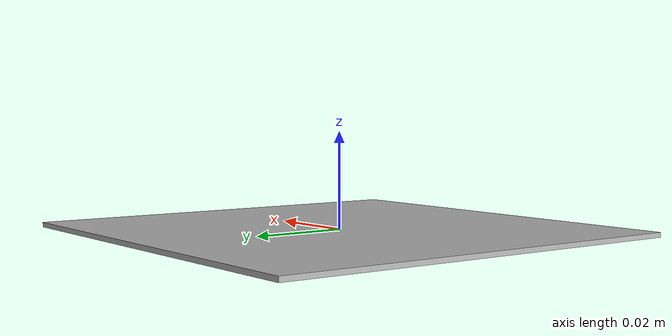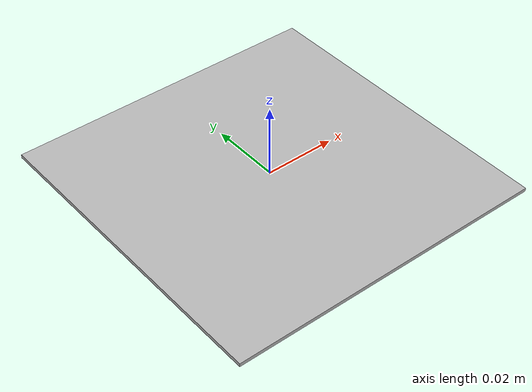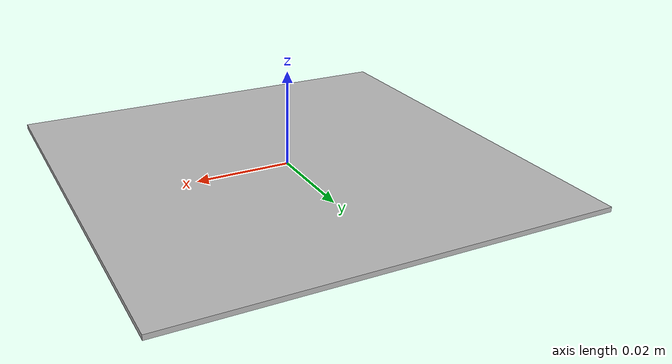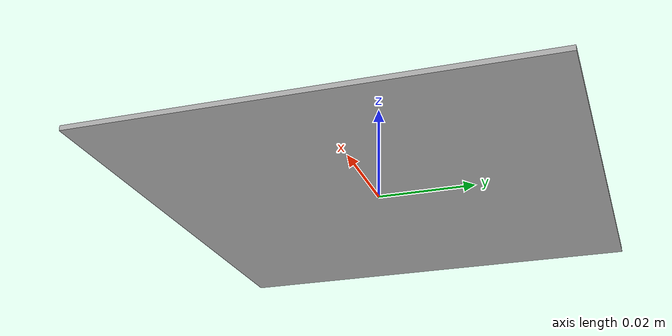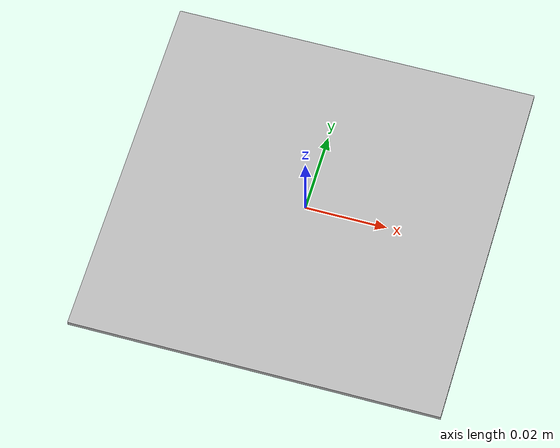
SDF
<?xml version='1.0'?>
<sdf version='1.7'>
  <model name='qrcode_B'>
    <link name='marker'>
      <gravity>0</gravity>
      <self_collide>0</self_collide>
      <inertial>
        <pose>0 0 0 0 -0 0</pose>
        <inertia>
          <ixx>1</ixx>
          <ixy>0</ixy>
          <ixz>0</ixz>
          <iyy>1</iyy>
          <iyz>0</iyz>
          <izz>1</izz>
        </inertia>
        <mass>1</mass>
      </inertial>
      <enable_wind>0</enable_wind>
      <kinematic>0</kinematic>
      <pose>0 0 0 0 -0 0</pose>
      <visual name='visual'>
        <geometry>
          <box>
            <size>0.09 0.09 0.001</size>
          </box>
        </geometry>
        <material>
          <script>
            <uri>model://qrcode_B/material/scripts</uri>
            <uri>model://qrcode_B/material/textures</uri>
            <name>Aruco/qrcode_B</name>
          </script>
          <shader type='pixel'/>
        </material>
        <pose>0 0 0 0 -0 0</pose>
        <transparency>0</transparency>
        <cast_shadows>1</cast_shadows>
      </visual>
      <collision name='collision'>
        <laser_retro>0</laser_retro>
        <max_contacts>10</max_contacts>
        <pose>0 0 0 0 -0 0</pose>
        <geometry>
          <box>
            <size>0.09 0.09 0.02</size>
          </box>
        </geometry>
        <surface>
          <friction>
            <ode>
              <mu>1</mu>
              <mu2>1</mu2>
              <fdir1>0 0 0</fdir1>
              <slip1>0</slip1>
              <slip2>0</slip2>
            </ode>
            <torsional>
              <coefficient>1</coefficient>
              <patch_radius>0</patch_radius>
              <surface_radius>0</surface_radius>
              <use_patch_radius>1</use_patch_radius>
              <ode>
                <slip>0</slip>
              </ode>
            </torsional>
          </friction>
          <bounce>
            <restitution_coefficient>0</restitution_coefficient>
            <threshold>1e+06</threshold>
          </bounce>
          <contact>
            <collide_without_contact>0</collide_without_contact>
            <collide_without_contact_bitmask>1</collide_without_contact_bitmask>
            <collide_bitmask>1</collide_bitmask>
            <ode>
              <soft_cfm>0</soft_cfm>
              <soft_erp>0.2</soft_erp>
              <kp>1e+13</kp>
              <kd>1</kd>
              <max_vel>0.01</max_vel>
              <min_depth>0</min_depth>
            </ode>
            <bullet>
              <split_impulse>1</split_impulse>
              <split_impulse_penetration_threshold>-0.01</split_impulse_penetration_threshold>
              <soft_cfm>0</soft_cfm>
              <soft_erp>0.2</soft_erp>
              <kp>1e+13</kp>
              <kd>1</kd>
            </bullet>
          </contact>
        </surface>
      </collision>
    </link>
    <static>1</static>
    <allow_auto_disable>1</allow_auto_disable>
  </model>
</sdf>
